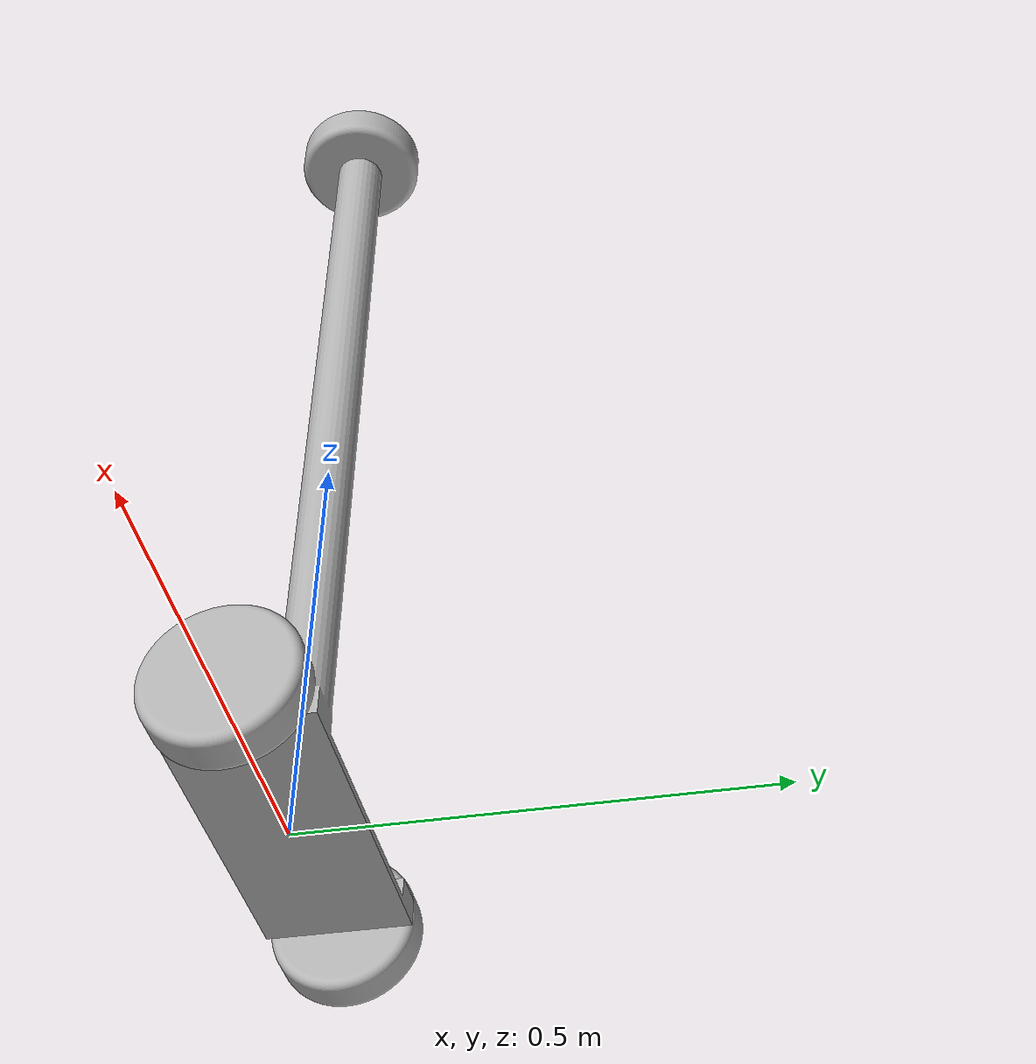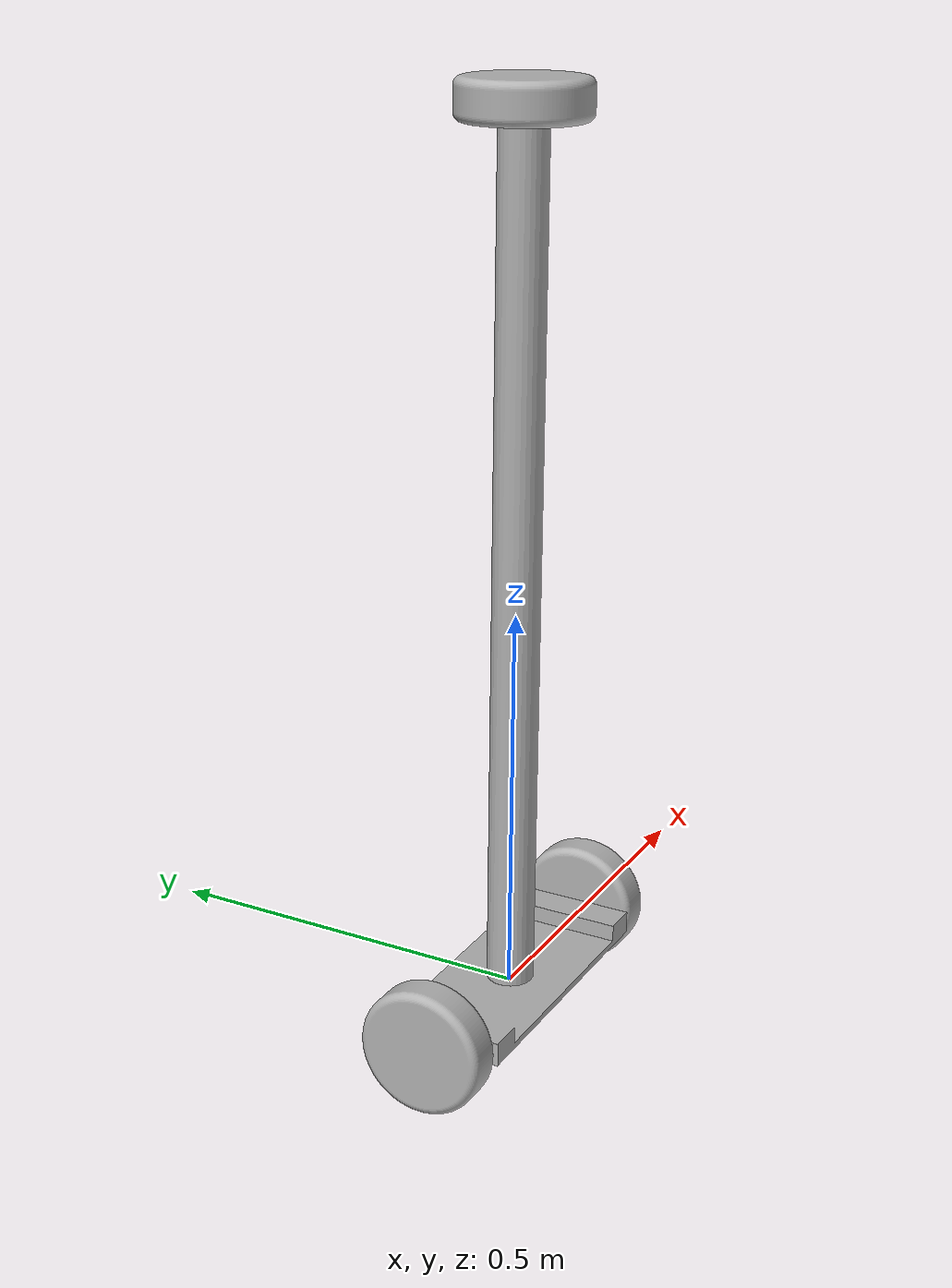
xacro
<?xml version="1.0" ?>
<robot name="balance" xmlns:xacro="http://www.ros.org/wiki/xacro">

<xacro:include filename="materials.xacro" />
<xacro:include filename="balance.trans" />
<xacro:include filename="balance.gazebo" />
<link name="base_link">
  <inertial>
    <origin xyz="-3.298439565456548e-17 0.0 0.15518382600667469" rpy="0 0 0"/>
    <mass value="1.1691157163837433"/>
    <inertia ixx="0.099393" iyy="0.113338" izz="0.017848" ixy="-0.0" iyz="0.0" ixz="0.0"/>
  </inertial>
  <visual>
    <origin xyz="0 0 0" rpy="0 0 0"/>
    <geometry>
      <mesh filename="meshes/base_link.stl" scale="0.001 0.001 0.001"/>
    </geometry>
    <material name="silver"/>
  </visual>
  <collision>
    <origin xyz="0 0 0" rpy="0 0 0"/>
    <geometry>
      <mesh filename="meshes/base_link.stl" scale="0.001 0.001 0.001"/>
    </geometry>
  </collision>
</link>

<link name="right_wheel_1">
  <inertial>
    <origin xyz="-0.025000000000000022 -3.695863830910979e-17 1.0408340855860843e-17" rpy="0 0 0"/>
    <mass value="0.9154342382147101"/>
    <inertia ixx="0.002874" iyy="0.001621" izz="0.001621" ixy="-0.0" iyz="0.0" ixz="-0.0"/>
  </inertial>
  <visual>
    <origin xyz="0.195 -0.0 -0.019" rpy="0 0 0"/>
    <geometry>
      <mesh filename="meshes/right_wheel_1.stl" scale="0.001 0.001 0.001"/>
    </geometry>
    <material name="silver"/>
  </visual>
  <collision>
    <origin xyz="0.195 -0.0 -0.019" rpy="0 0 0"/>
    <geometry>
      <mesh filename="meshes/right_wheel_1.stl" scale="0.001 0.001 0.001"/>
    </geometry>
  </collision>
</link>

<link name="left_wheel_1">
  <inertial>
    <origin xyz="0.025000000000000022 -2.7718978731832345e-17 1.0408340855860843e-17" rpy="0 0 0"/>
    <mass value="0.9154342382147101"/>
    <inertia ixx="0.002874" iyy="0.001621" izz="0.001621" ixy="-0.0" iyz="0.0" ixz="-0.0"/>
  </inertial>
  <visual>
    <origin xyz="-0.195 -0.0 -0.019" rpy="0 0 0"/>
    <geometry>
      <mesh filename="meshes/left_wheel_1.stl" scale="0.001 0.001 0.001"/>
    </geometry>
    <material name="silver"/>
  </visual>
  <collision>
    <origin xyz="-0.195 -0.0 -0.019" rpy="0 0 0"/>
    <geometry>
      <mesh filename="meshes/left_wheel_1.stl" scale="0.001 0.001 0.001"/>
    </geometry>
  </collision>
</link>

<link name="balance_wheel_1">
  <inertial>
    <origin xyz="8.315693619549702e-17 -2.7718978731832345e-17 0.025000000000000133" rpy="0 0 0"/>
    <mass value="0.9154342382147101"/>
    <inertia ixx="0.001621" iyy="0.001621" izz="0.002874" ixy="0.0" iyz="-0.0" ixz="-0.0"/>
  </inertial>
  <visual>
    <origin xyz="-0.0 -0.0 -1.088" rpy="0 0 0"/>
    <geometry>
      <mesh filename="meshes/balance_wheel_1.stl" scale="0.001 0.001 0.001"/>
    </geometry>
    <material name="silver"/>
  </visual>
  <collision>
    <origin xyz="-0.0 -0.0 -1.088" rpy="0 0 0"/>
    <geometry>
      <mesh filename="meshes/balance_wheel_1.stl" scale="0.001 0.001 0.001"/>
    </geometry>
  </collision>
</link>

<joint name="Revolute 1" type="continuous">
  <origin xyz="-0.195 0.0 0.019" rpy="0 0 0"/>
  <parent link="base_link"/>
  <child link="right_wheel_1"/>
  <axis xyz="-1.0 0.0 0.0"/>
</joint>

<joint name="Revolute 2" type="continuous">
  <origin xyz="0.195 0.0 0.019" rpy="0 0 0"/>
  <parent link="base_link"/>
  <child link="left_wheel_1"/>
  <axis xyz="1.0 0.0 0.0"/>
</joint>

<joint name="Rigid 3" type="fixed">
  <origin xyz="0.0 0.0 1.088" rpy="0 0 0"/>
  <parent link="base_link"/>
  <child link="balance_wheel_1"/>
</joint>

</robot>

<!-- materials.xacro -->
<robot name="balance" xmlns:xacro="http://www.ros.org/wiki/xacro" >

<material name="silver">
  <color rgba="0.700 0.700 0.700 1.000"/>
</material>

</robot>

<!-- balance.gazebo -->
<robot name="balance" xmlns:xacro="http://www.ros.org/wiki/xacro" >

<xacro:property name="body_color" value="Gazebo/Silver" />

<gazebo>
  <plugin name="control" filename="libgazebo_ros_control.so"/>
</gazebo>
<gazebo reference="base_link">
  <material>${body_color}</material>
  <mu1>0.2</mu1>
  <mu2>0.2</mu2>
  <selfCollide>true</selfCollide>
  <gravity>true</gravity>
</gazebo>

<gazebo reference="right_wheel_1">
  <material>${body_color}</material>
  <mu1>0.2</mu1>
  <mu2>0.2</mu2>
  <selfCollide>true</selfCollide>
</gazebo>

<gazebo reference="left_wheel_1">
  <material>${body_color}</material>
  <mu1>0.2</mu1>
  <mu2>0.2</mu2>
  <selfCollide>true</selfCollide>
</gazebo>

<gazebo reference="balance_wheel_1">
  <material>${body_color}</material>
  <mu1>0.2</mu1>
  <mu2>0.2</mu2>
  <selfCollide>true</selfCollide>
</gazebo>

</robot>
